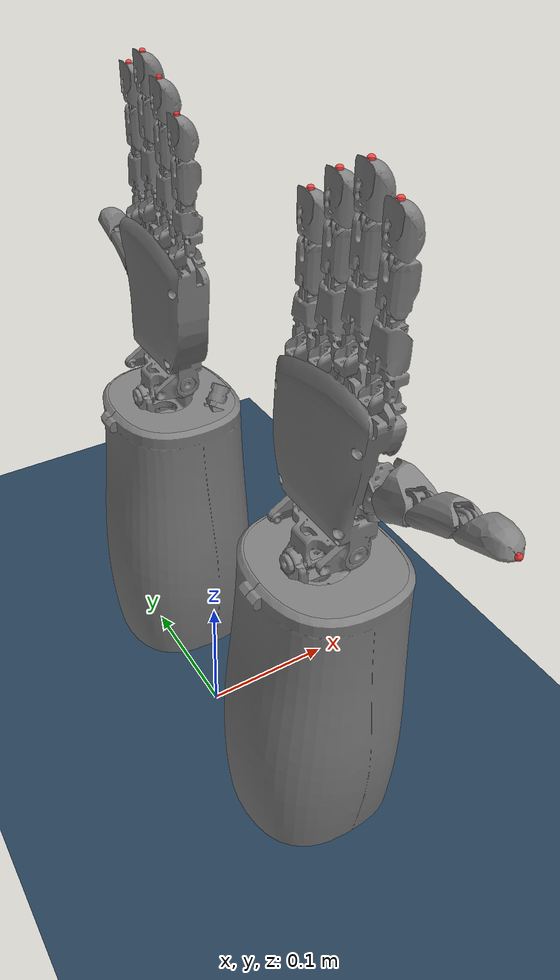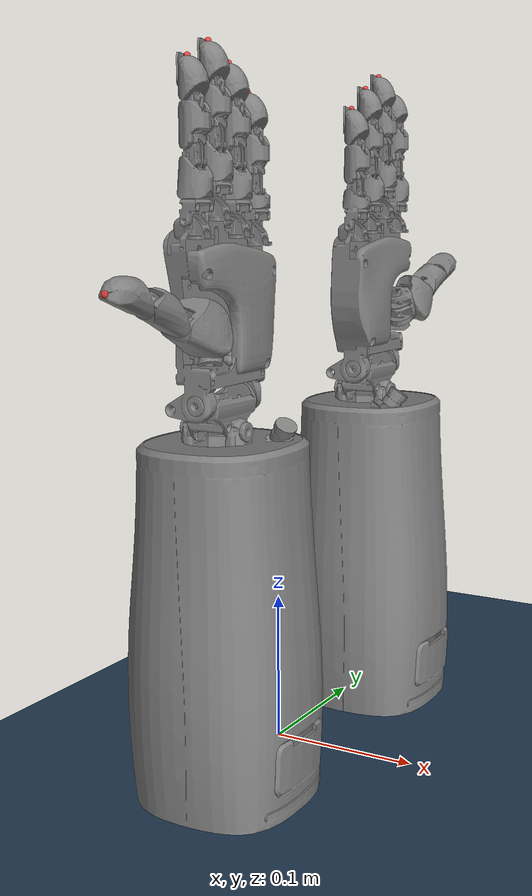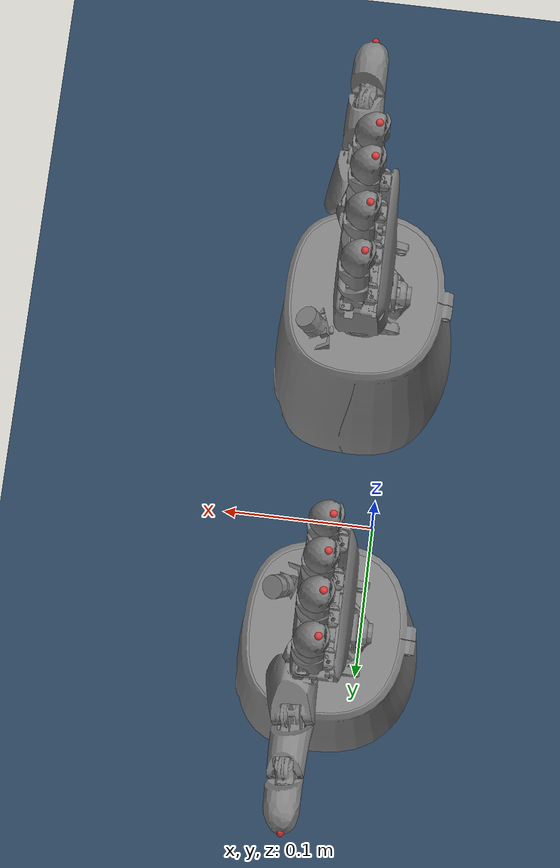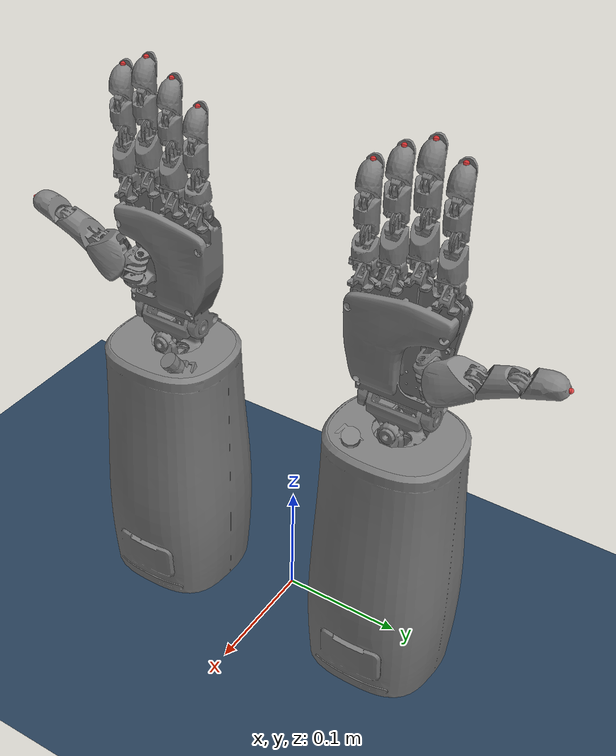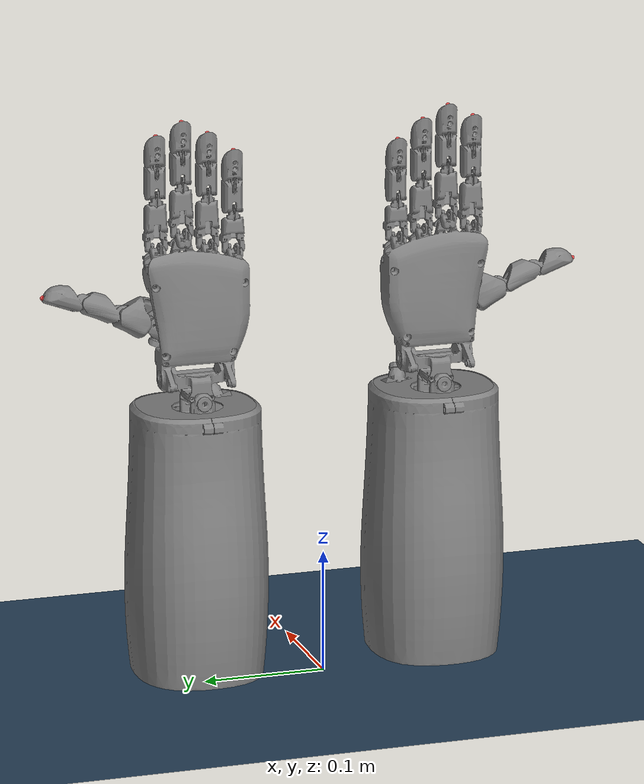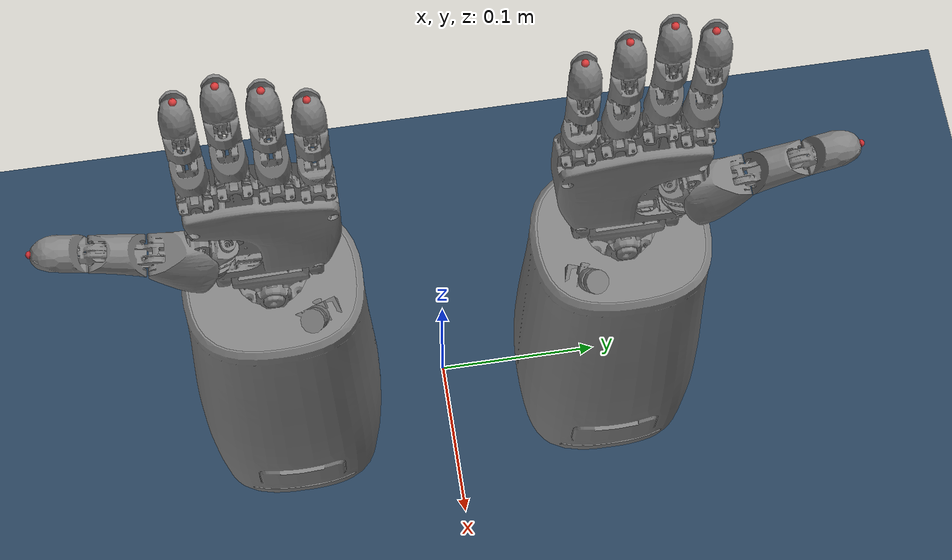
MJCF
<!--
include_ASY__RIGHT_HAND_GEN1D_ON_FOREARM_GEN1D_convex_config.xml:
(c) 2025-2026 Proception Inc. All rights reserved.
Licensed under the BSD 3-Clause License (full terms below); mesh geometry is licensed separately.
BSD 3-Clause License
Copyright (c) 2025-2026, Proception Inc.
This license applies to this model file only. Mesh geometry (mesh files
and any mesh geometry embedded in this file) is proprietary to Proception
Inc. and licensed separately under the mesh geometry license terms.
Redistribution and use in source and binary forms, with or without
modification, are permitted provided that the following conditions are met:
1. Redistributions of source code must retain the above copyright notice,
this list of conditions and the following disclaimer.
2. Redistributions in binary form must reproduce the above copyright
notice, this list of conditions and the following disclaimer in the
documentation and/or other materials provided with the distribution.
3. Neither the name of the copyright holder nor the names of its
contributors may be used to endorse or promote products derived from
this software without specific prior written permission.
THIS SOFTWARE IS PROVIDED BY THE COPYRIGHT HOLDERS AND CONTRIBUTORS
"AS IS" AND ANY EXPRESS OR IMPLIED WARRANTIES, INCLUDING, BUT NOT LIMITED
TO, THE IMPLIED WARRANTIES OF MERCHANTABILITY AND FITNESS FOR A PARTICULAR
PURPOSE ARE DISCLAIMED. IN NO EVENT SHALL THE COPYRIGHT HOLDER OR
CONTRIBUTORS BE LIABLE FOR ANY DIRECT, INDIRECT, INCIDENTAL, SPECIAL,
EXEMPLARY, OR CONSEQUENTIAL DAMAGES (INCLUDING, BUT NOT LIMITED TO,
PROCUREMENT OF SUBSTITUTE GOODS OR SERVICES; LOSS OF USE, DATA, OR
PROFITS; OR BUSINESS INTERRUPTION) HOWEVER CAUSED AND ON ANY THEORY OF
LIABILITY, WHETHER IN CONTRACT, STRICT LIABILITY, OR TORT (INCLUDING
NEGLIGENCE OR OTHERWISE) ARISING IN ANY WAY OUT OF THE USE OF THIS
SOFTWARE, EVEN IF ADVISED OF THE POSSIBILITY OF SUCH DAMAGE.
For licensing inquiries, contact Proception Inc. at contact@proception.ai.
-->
<?xml version='1.0' encoding='utf-8'?>
<mujoco model="BothHandsScene">
    <compiler coordinate="local" angle="radian" meshdir="../../assets/meshes" />
    <include file="common_scene.xml"/>
    <include file="../../assets/mjcf/gen_1_D_R/include_ASY__RIGHT_HAND_GEN1D_ON_FOREARM_GEN1D_convex_config.xml"/>
    <include file="../../assets/mjcf/gen_1_D_L/include_ASY__LEFT_HAND_GEN1D_ON_FOREARM_GEN1D_convex_config.xml"/>

    <worldbody>
        <body name="RHand" pos="0.0000000 0.1000000 0.0000000" quat="1e+00 0e+00 0e+00 0e+00">
            <include file="../../assets/mjcf/gen_1_D_R/include_ASY__RIGHT_HAND_GEN1D_ON_FOREARM_GEN1D_convex_chain.xml"/>
        </body>
        <body name="LHand" pos="0.0000000 -0.1000000 0.0000000" quat="1e+00 0e+00 0e+00 0e+00">
            <include file="../../assets/mjcf/gen_1_D_L/include_ASY__LEFT_HAND_GEN1D_ON_FOREARM_GEN1D_convex_chain.xml"/>
        </body>
    </worldbody>
</mujoco>

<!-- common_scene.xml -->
<mujoco model="scene">
        <!-- Camera placement -->
        <statistic extent="0.3" center="0 0 0.15"/>
        <visual>
            <rgba haze="0.15 0.25 0.35 1"/>
            <quality shadowsize="8192"/>
            <global azimuth="310" elevation="-30"/>
        </visual>

            <default>
        <default class="visual">
            <geom type="mesh" contype="0" conaffinity="0" group="2" />
        </default>
        <default class="collision">
            <geom type="mesh" group="3" rgba="0.6 0.3 0.3 0.3" />
        </default>
        <default class="site/keypoint">
                <site rgba="1 0.2 0.2 0.8" size="0.002" group="0" />
            </default>
            </default>

        <!-- Background -->
        <asset>
            <texture type="skybox" builtin="gradient" rgb1="0.3 0.5 0.7" rgb2="0 0 0" width="512" height="3072"/>
            <texture type="2d" name="groundplane" builtin="checker" mark="edge" rgb1="0.2 0.3 0.4" rgb2="0.1 0.2 0.3"
            markrgb="0.8 0.8 0.8" width="300" height="300"/>
            <material name="groundplane" texture="groundplane" texuniform="true" texrepeat="5 5" reflectance="0.2"/>
        </asset>

        <worldbody>
            <!-- Lighting and floor -->
            <light pos="0 0 1"/>
            <light pos="0.3 0 1.5" dir="0 0 -1" directional="true"/>
            <geom name="floor" pos="0 0 0" size="0 0 0.05" type="plane" material="groundplane"/>
        </worldbody>
    </mujoco>

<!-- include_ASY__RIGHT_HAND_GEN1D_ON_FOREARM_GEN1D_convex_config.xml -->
<mujocoinclude model="ASY__RIGHT_HAND_GEN1D_ON_FOREARM_GEN1D" name="ASY__RIGHT_HAND_GEN1D_ON_FOREARM_GEN1D">
    <asset>
        <mesh name="gen_1_D_R/optimized/bottom_virtual_cover1" file="gen_1_D_R/optimized/asy_right_forearm_gen1d1_bottom_virtual_cover1.obj" />
        <mesh name="gen_1_D_R/optimized/chs" file="gen_1_D_R/optimized/asy_right_forearm_gen1d1_chassis_gen_1d1.obj" />
        <mesh name="gen_1_D_R/optimized/virtual_cover1" file="gen_1_D_R/optimized/asy_right_forearm_gen1d1_virtual_cover1.obj" />
        <mesh name="gen_1_D_R/optimized/gen1d01_dist" file="gen_1_D_R/optimized/asy_right_hand_gen1d1_finger_gen1d01_distal.obj" />
        <mesh name="gen_1_D_R/optimized/gen1d01_med" file="gen_1_D_R/optimized/asy_right_hand_gen1d1_finger_gen1d01_medial.obj" />
        <mesh name="gen_1_D_R/optimized/gen1d01_meta" file="gen_1_D_R/optimized/asy_right_hand_gen1d1_finger_gen1d01_metacarpal.obj" />
        <mesh name="gen_1_D_R/optimized/gen1d01_prox" file="gen_1_D_R/optimized/asy_right_hand_gen1d1_finger_gen1d01_proximal.obj" />
        <mesh name="gen_1_D_R/optimized/gen1d02_dist" file="gen_1_D_R/optimized/asy_right_hand_gen1d1_finger_gen1d02_distal_gen1d01.obj" />
        <mesh name="gen_1_D_R/optimized/gen1d02_med" file="gen_1_D_R/optimized/asy_right_hand_gen1d1_finger_gen1d02_medial_gen1d01.obj" />
        <mesh name="gen_1_D_R/optimized/gen1d02_meta" file="gen_1_D_R/optimized/asy_right_hand_gen1d1_finger_gen1d02_metacarpal_gen1d01.obj" />
        <mesh name="gen_1_D_R/optimized/gen1d02_prox" file="gen_1_D_R/optimized/asy_right_hand_gen1d1_finger_gen1d02_proximal_gen1d01.obj" />
        <mesh name="gen_1_D_R/optimized/gen1d03_dist" file="gen_1_D_R/optimized/asy_right_hand_gen1d1_finger_gen1d03_distal_gen1d01.obj" />
        <mesh name="gen_1_D_R/optimized/gen1d03_med" file="gen_1_D_R/optimized/asy_right_hand_gen1d1_finger_gen1d03_medial_gen1d01.obj" />
        <mesh name="gen_1_D_R/optimized/gen1d03_meta" file="gen_1_D_R/optimized/asy_right_hand_gen1d1_finger_gen1d03_metacarpal_gen1d01.obj" />
        <mesh name="gen_1_D_R/optimized/gen1d03_prox" file="gen_1_D_R/optimized/asy_right_hand_gen1d1_finger_gen1d03_proximal_gen1d01.obj" />
        <mesh name="gen_1_D_R/optimized/palm" file="gen_1_D_R/optimized/asy_right_hand_gen1d1_palm_gen1b01.obj" />
        <mesh name="gen_1_D_R/optimized/pinky_dist" file="gen_1_D_R/optimized/asy_right_hand_gen1d1_pinky_gen1d01_distal_finger.obj" />
        <mesh name="gen_1_D_R/optimized/pinky_med" file="gen_1_D_R/optimized/asy_right_hand_gen1d1_pinky_gen1d01_medial_finger.obj" />
        <mesh name="gen_1_D_R/optimized/pinky_meta" file="gen_1_D_R/optimized/asy_right_hand_gen1d1_pinky_gen1d01_metacarpal_finger.obj" />
        <mesh name="gen_1_D_R/optimized/pinky_prox" file="gen_1_D_R/optimized/asy_right_hand_gen1d1_pinky_gen1d01_proximal.obj" />
        <mesh name="gen_1_D_R/optimized/wrist_base" file="gen_1_D_R/optimized/asy_right_hand_gen1d1_sim_wrist_gen21_r1_base_gen211.obj" />
        <mesh name="gen_1_D_R/optimized/wrist_ujoint" file="gen_1_D_R/optimized/asy_right_hand_gen1d1_sim_wrist_gen21_r1_ujoint_gen211.obj" />
        <mesh name="gen_1_D_R/optimized/thumb_base" file="gen_1_D_R/optimized/asy_right_hand_gen1d1_thumb_gen1d01_base.obj" />
        <mesh name="gen_1_D_R/optimized/thumb_dist" file="gen_1_D_R/optimized/asy_right_hand_gen1d1_thumb_gen1d01_distal.obj" />
        <mesh name="gen_1_D_R/optimized/thumb_meta" file="gen_1_D_R/optimized/asy_right_hand_gen1d1_thumb_gen1d01_metacarpal.obj" />
        <mesh name="gen_1_D_R/optimized/thumb_prox" file="gen_1_D_R/optimized/asy_right_hand_gen1d1_thumb_gen1d01_proximal.obj" />
        <mesh name="gen_1_D_R/optimized/thumb_trap" file="gen_1_D_R/optimized/asy_right_hand_gen1d1_thumb_gen1d01_trapezium.obj" />
        <mesh name="gen_1_D_R/convex/bottom_virtual_cover1" file="gen_1_D_R/convex/asy_right_forearm_gen1d1_bottom_virtual_cover1.obj" />
        <mesh name="gen_1_D_R/convex/chs" file="gen_1_D_R/convex/asy_right_forearm_gen1d1_chassis_gen_1d1.obj" />
        <mesh name="gen_1_D_R/convex/virtual_cover1" file="gen_1_D_R/convex/asy_right_forearm_gen1d1_virtual_cover1.obj" />
        <mesh name="gen_1_D_R/convex/gen1d01_dist" file="gen_1_D_R/convex/asy_right_hand_gen1d1_finger_gen1d01_distal.obj" />
        <mesh name="gen_1_D_R/convex/gen1d01_med" file="gen_1_D_R/convex/asy_right_hand_gen1d1_finger_gen1d01_medial.obj" />
        <mesh name="gen_1_D_R/convex/gen1d01_meta" file="gen_1_D_R/convex/asy_right_hand_gen1d1_finger_gen1d01_metacarpal.obj" />
        <mesh name="gen_1_D_R/convex/gen1d01_prox" file="gen_1_D_R/convex/asy_right_hand_gen1d1_finger_gen1d01_proximal.obj" />
        <mesh name="gen_1_D_R/convex/gen1d02_dist" file="gen_1_D_R/convex/asy_right_hand_gen1d1_finger_gen1d02_distal_gen1d01.obj" />
        <mesh name="gen_1_D_R/convex/gen1d02_med" file="gen_1_D_R/convex/asy_right_hand_gen1d1_finger_gen1d02_medial_gen1d01.obj" />
        <mesh name="gen_1_D_R/convex/gen1d02_meta" file="gen_1_D_R/convex/asy_right_hand_gen1d1_finger_gen1d02_metacarpal_gen1d01.obj" />
        <mesh name="gen_1_D_R/convex/gen1d02_prox" file="gen_1_D_R/convex/asy_right_hand_gen1d1_finger_gen1d02_proximal_gen1d01.obj" />
        <mesh name="gen_1_D_R/convex/gen1d03_dist" file="gen_1_D_R/convex/asy_right_hand_gen1d1_finger_gen1d03_distal_gen1d01.obj" />
        <mesh name="gen_1_D_R/convex/gen1d03_med" file="gen_1_D_R/convex/asy_right_hand_gen1d1_finger_gen1d03_medial_gen1d01.obj" />
        <mesh name="gen_1_D_R/convex/gen1d03_meta" file="gen_1_D_R/convex/asy_right_hand_gen1d1_finger_gen1d03_metacarpal_gen1d01.obj" />
        <mesh name="gen_1_D_R/convex/gen1d03_prox" file="gen_1_D_R/convex/asy_right_hand_gen1d1_finger_gen1d03_proximal_gen1d01.obj" />
        <mesh name="gen_1_D_R/convex/palm" file="gen_1_D_R/convex/asy_right_hand_gen1d1_palm_gen1b01.obj" />
        <mesh name="gen_1_D_R/convex/pinky_dist" file="gen_1_D_R/convex/asy_right_hand_gen1d1_pinky_gen1d01_distal_finger.obj" />
        <mesh name="gen_1_D_R/convex/pinky_med" file="gen_1_D_R/convex/asy_right_hand_gen1d1_pinky_gen1d01_medial_finger.obj" />
        <mesh name="gen_1_D_R/convex/pinky_meta" file="gen_1_D_R/convex/asy_right_hand_gen1d1_pinky_gen1d01_metacarpal_finger.obj" />
        <mesh name="gen_1_D_R/convex/pinky_prox" file="gen_1_D_R/convex/asy_right_hand_gen1d1_pinky_gen1d01_proximal.obj" />
        <mesh name="gen_1_D_R/convex/wrist_base" file="gen_1_D_R/convex/asy_right_hand_gen1d1_sim_wrist_gen21_r1_base_gen211.obj" />
        <mesh name="gen_1_D_R/convex/wrist_ujoint" file="gen_1_D_R/convex/asy_right_hand_gen1d1_sim_wrist_gen21_r1_ujoint_gen211.obj" />
        <mesh name="gen_1_D_R/convex/thumb_base" file="gen_1_D_R/convex/asy_right_hand_gen1d1_thumb_gen1d01_base.obj" />
        <mesh name="gen_1_D_R/convex/thumb_dist" file="gen_1_D_R/convex/asy_right_hand_gen1d1_thumb_gen1d01_distal.obj" />
        <mesh name="gen_1_D_R/convex/thumb_meta" file="gen_1_D_R/convex/asy_right_hand_gen1d1_thumb_gen1d01_metacarpal.obj" />
        <mesh name="gen_1_D_R/convex/thumb_prox" file="gen_1_D_R/convex/asy_right_hand_gen1d1_thumb_gen1d01_proximal.obj" />
        <mesh name="gen_1_D_R/convex/thumb_trap" file="gen_1_D_R/convex/asy_right_hand_gen1d1_thumb_gen1d01_trapezium.obj" />
    </asset>
</mujocoinclude>

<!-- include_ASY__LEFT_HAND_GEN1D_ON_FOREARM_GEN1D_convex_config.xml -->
<mujocoinclude model="ASY__LEFT_HAND_GEN1D_ON_FOREARM_GEN1D" name="ASY__LEFT_HAND_GEN1D_ON_FOREARM_GEN1D">
    <asset>
        <mesh name="gen_1_D_L/optimized/bottom_virtual_cover1" file="gen_1_D_L/optimized/asy_left_forearm_gen1d1_bottom_virtual_cover1.obj" />
        <mesh name="gen_1_D_L/optimized/chs" file="gen_1_D_L/optimized/asy_left_forearm_gen1d1_chassis_gen_1d1.obj" />
        <mesh name="gen_1_D_L/optimized/virtual_cover1" file="gen_1_D_L/optimized/asy_left_forearm_gen1d1_virtual_cover1.obj" />
        <mesh name="gen_1_D_L/optimized/gen1d01_dist" file="gen_1_D_L/optimized/asy_left_hand_gen1d1_finger_gen1d01_distal.obj" />
        <mesh name="gen_1_D_L/optimized/gen1d01_med" file="gen_1_D_L/optimized/asy_left_hand_gen1d1_finger_gen1d01_medial.obj" />
        <mesh name="gen_1_D_L/optimized/gen1d01_meta" file="gen_1_D_L/optimized/asy_left_hand_gen1d1_finger_gen1d01_metacarpal.obj" />
        <mesh name="gen_1_D_L/optimized/gen1d01_prox" file="gen_1_D_L/optimized/asy_left_hand_gen1d1_finger_gen1d01_proximal.obj" />
        <mesh name="gen_1_D_L/optimized/gen1d02_dist" file="gen_1_D_L/optimized/asy_left_hand_gen1d1_finger_gen1d02_distal_gen1d01.obj" />
        <mesh name="gen_1_D_L/optimized/gen1d02_med" file="gen_1_D_L/optimized/asy_left_hand_gen1d1_finger_gen1d02_medial_gen1d01.obj" />
        <mesh name="gen_1_D_L/optimized/gen1d02_meta" file="gen_1_D_L/optimized/asy_left_hand_gen1d1_finger_gen1d02_metacarpal_gen1d01.obj" />
        <mesh name="gen_1_D_L/optimized/gen1d02_prox" file="gen_1_D_L/optimized/asy_left_hand_gen1d1_finger_gen1d02_proximal_gen1d01.obj" />
        <mesh name="gen_1_D_L/optimized/gen1d03_dist" file="gen_1_D_L/optimized/asy_left_hand_gen1d1_finger_gen1d03_distal_gen1d01.obj" />
        <mesh name="gen_1_D_L/optimized/gen1d03_med" file="gen_1_D_L/optimized/asy_left_hand_gen1d1_finger_gen1d03_medial_gen1d01.obj" />
        <mesh name="gen_1_D_L/optimized/gen1d03_meta" file="gen_1_D_L/optimized/asy_left_hand_gen1d1_finger_gen1d03_metacarpal_gen1d01.obj" />
        <mesh name="gen_1_D_L/optimized/gen1d03_prox" file="gen_1_D_L/optimized/asy_left_hand_gen1d1_finger_gen1d03_proximal_gen1d01.obj" />
        <mesh name="gen_1_D_L/optimized/palm" file="gen_1_D_L/optimized/asy_left_hand_gen1d1_palm_gen1b01.obj" />
        <mesh name="gen_1_D_L/optimized/pinky_dist" file="gen_1_D_L/optimized/asy_left_hand_gen1d1_pinky_gen1d01_distal_finger.obj" />
        <mesh name="gen_1_D_L/optimized/pinky_med" file="gen_1_D_L/optimized/asy_left_hand_gen1d1_pinky_gen1d01_medial_finger.obj" />
        <mesh name="gen_1_D_L/optimized/pinky_meta" file="gen_1_D_L/optimized/asy_left_hand_gen1d1_pinky_gen1d01_metacarpal_finger.obj" />
        <mesh name="gen_1_D_L/optimized/pinky_prox" file="gen_1_D_L/optimized/asy_left_hand_gen1d1_pinky_gen1d01_proximal.obj" />
        <mesh name="gen_1_D_L/optimized/wrist_base" file="gen_1_D_L/optimized/asy_left_hand_gen1d1_sim_wrist_gen211_base.obj" />
        <mesh name="gen_1_D_L/optimized/wrist_ujoint" file="gen_1_D_L/optimized/asy_left_hand_gen1d1_sim_wrist_gen211_ujoint.obj" />
        <mesh name="gen_1_D_L/optimized/thumb_base" file="gen_1_D_L/optimized/asy_left_hand_gen1d1_thumb_gen1d01_base.obj" />
        <mesh name="gen_1_D_L/optimized/thumb_dist" file="gen_1_D_L/optimized/asy_left_hand_gen1d1_thumb_gen1d01_distal.obj" />
        <mesh name="gen_1_D_L/optimized/thumb_meta" file="gen_1_D_L/optimized/asy_left_hand_gen1d1_thumb_gen1d01_metacarpal.obj" />
        <mesh name="gen_1_D_L/optimized/thumb_prox" file="gen_1_D_L/optimized/asy_left_hand_gen1d1_thumb_gen1d01_proximal.obj" />
        <mesh name="gen_1_D_L/optimized/thumb_trap" file="gen_1_D_L/optimized/asy_left_hand_gen1d1_thumb_gen1d01_trapezium.obj" />
        <mesh name="gen_1_D_L/convex/bottom_virtual_cover1" file="gen_1_D_L/convex/asy_left_forearm_gen1d1_bottom_virtual_cover1.obj" />
        <mesh name="gen_1_D_L/convex/chs" file="gen_1_D_L/convex/asy_left_forearm_gen1d1_chassis_gen_1d1.obj" />
        <mesh name="gen_1_D_L/convex/virtual_cover1" file="gen_1_D_L/convex/asy_left_forearm_gen1d1_virtual_cover1.obj" />
        <mesh name="gen_1_D_L/convex/gen1d01_dist" file="gen_1_D_L/convex/asy_left_hand_gen1d1_finger_gen1d01_distal.obj" />
        <mesh name="gen_1_D_L/convex/gen1d01_med" file="gen_1_D_L/convex/asy_left_hand_gen1d1_finger_gen1d01_medial.obj" />
        <mesh name="gen_1_D_L/convex/gen1d01_meta" file="gen_1_D_L/convex/asy_left_hand_gen1d1_finger_gen1d01_metacarpal.obj" />
        <mesh name="gen_1_D_L/convex/gen1d01_prox" file="gen_1_D_L/convex/asy_left_hand_gen1d1_finger_gen1d01_proximal.obj" />
        <mesh name="gen_1_D_L/convex/gen1d02_dist" file="gen_1_D_L/convex/asy_left_hand_gen1d1_finger_gen1d02_distal_gen1d01.obj" />
        <mesh name="gen_1_D_L/convex/gen1d02_med" file="gen_1_D_L/convex/asy_left_hand_gen1d1_finger_gen1d02_medial_gen1d01.obj" />
        <mesh name="gen_1_D_L/convex/gen1d02_meta" file="gen_1_D_L/convex/asy_left_hand_gen1d1_finger_gen1d02_metacarpal_gen1d01.obj" />
        <mesh name="gen_1_D_L/convex/gen1d02_prox" file="gen_1_D_L/convex/asy_left_hand_gen1d1_finger_gen1d02_proximal_gen1d01.obj" />
        <mesh name="gen_1_D_L/convex/gen1d03_dist" file="gen_1_D_L/convex/asy_left_hand_gen1d1_finger_gen1d03_distal_gen1d01.obj" />
        <mesh name="gen_1_D_L/convex/gen1d03_med" file="gen_1_D_L/convex/asy_left_hand_gen1d1_finger_gen1d03_medial_gen1d01.obj" />
        <mesh name="gen_1_D_L/convex/gen1d03_meta" file="gen_1_D_L/convex/asy_left_hand_gen1d1_finger_gen1d03_metacarpal_gen1d01.obj" />
        <mesh name="gen_1_D_L/convex/gen1d03_prox" file="gen_1_D_L/convex/asy_left_hand_gen1d1_finger_gen1d03_proximal_gen1d01.obj" />
        <mesh name="gen_1_D_L/convex/palm" file="gen_1_D_L/convex/asy_left_hand_gen1d1_palm_gen1b01.obj" />
        <mesh name="gen_1_D_L/convex/pinky_dist" file="gen_1_D_L/convex/asy_left_hand_gen1d1_pinky_gen1d01_distal_finger.obj" />
        <mesh name="gen_1_D_L/convex/pinky_med" file="gen_1_D_L/convex/asy_left_hand_gen1d1_pinky_gen1d01_medial_finger.obj" />
        <mesh name="gen_1_D_L/convex/pinky_meta" file="gen_1_D_L/convex/asy_left_hand_gen1d1_pinky_gen1d01_metacarpal_finger.obj" />
        <mesh name="gen_1_D_L/convex/pinky_prox" file="gen_1_D_L/convex/asy_left_hand_gen1d1_pinky_gen1d01_proximal.obj" />
        <mesh name="gen_1_D_L/convex/wrist_base" file="gen_1_D_L/convex/asy_left_hand_gen1d1_sim_wrist_gen211_base.obj" />
        <mesh name="gen_1_D_L/convex/wrist_ujoint" file="gen_1_D_L/convex/asy_left_hand_gen1d1_sim_wrist_gen211_ujoint.obj" />
        <mesh name="gen_1_D_L/convex/thumb_base" file="gen_1_D_L/convex/asy_left_hand_gen1d1_thumb_gen1d01_base.obj" />
        <mesh name="gen_1_D_L/convex/thumb_dist" file="gen_1_D_L/convex/asy_left_hand_gen1d1_thumb_gen1d01_distal.obj" />
        <mesh name="gen_1_D_L/convex/thumb_meta" file="gen_1_D_L/convex/asy_left_hand_gen1d1_thumb_gen1d01_metacarpal.obj" />
        <mesh name="gen_1_D_L/convex/thumb_prox" file="gen_1_D_L/convex/asy_left_hand_gen1d1_thumb_gen1d01_proximal.obj" />
        <mesh name="gen_1_D_L/convex/thumb_trap" file="gen_1_D_L/convex/asy_left_hand_gen1d1_thumb_gen1d01_trapezium.obj" />
    </asset>
</mujocoinclude>

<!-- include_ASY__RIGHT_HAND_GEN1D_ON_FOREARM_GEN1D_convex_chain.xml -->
<mujocoinclude model="ASY__RIGHT_HAND_GEN1D_ON_FOREARM_GEN1D" name="ASY__RIGHT_HAND_GEN1D_ON_FOREARM_GEN1D">
    <body name="R_right_forearm_chs" pos="0.0000000 0.0000000 0.0000000" quat="5e-01 5e-01 5e-01 5e-01">
        <inertial mass="5.7536239" pos="-0.0000386 0.1070748 0.0191471" diaginertia="2.022766e-02 4.968134e-03 2.094171e-02" />
        <geom name="R_right_forearm_chs/visual" class="visual" mesh="gen_1_D_R/optimized/chs" />
        <geom name="R_right_forearm_chs/collision" class="collision" mesh="gen_1_D_R/convex/chs" />
        <camera name="R_wrist_camera" pos="-0.0192175 0.2372545 0.0533280" quat="4.964001e-01 8.425887e-01 -2.056157e-01 -3.678822e-02" fovy="96" />
        <site name="R_wrist_camera" class="site/keypoint" pos="-0.0234756 0.2241122 0.0452565" quat="2.056157e-01 3.678822e-02 4.964001e-01 8.425887e-01" />
        <body name="R_right_forearm_bottom_virtual_cover1" pos="0.0000000 0.0050000 0.0200000" quat="7.071068e-01 -7.071068e-01 3.70192e-15 -4.5206e-15">
            <inertial mass="0.0173193" pos="0.0000000 0.0000000 0.0005000" diaginertia="1.86024e-06 5.424478e-06 7.281831e-06" />
            <geom name="R_right_forearm_bottom_virtual_cover1/visual" class="visual" mesh="gen_1_D_R/optimized/bottom_virtual_cover1" />
            <geom name="R_right_forearm_bottom_virtual_cover1/collision" class="collision" mesh="gen_1_D_R/convex/bottom_virtual_cover1" />
        </body>
        <body name="R_right_forearm_cover1" pos="0.0000000 0.0120000 -0.0000000" quat="1e+00 -0e+00 -3.062e-17 -0e+00">
            <inertial mass="0.0462142" pos="-0.0000007 0.2137000 0.0216575" diaginertia="2.833063e-05 6.341319e-05 3.509025e-05" />
            <geom name="R_right_forearm_cover1/visual" class="visual" mesh="gen_1_D_R/optimized/virtual_cover1" />
            <geom name="R_right_forearm_cover1/collision" class="collision" mesh="gen_1_D_R/convex/virtual_cover1" />
        </body>
        <body name="R_right_forearm_wrist_base" pos="0.0000000 0.2132000 0.0154500" quat="1e+00 7.643e-17 3.072e-17 0e+00">
            <inertial mass="0.0249763" pos="0.0000046 0.0061671 0.0004368" diaginertia="5.728056e-06 1.163974e-05 7.998322e-06" />
            <geom name="R_right_forearm_wrist_base/visual" class="visual" mesh="gen_1_D_R/optimized/wrist_base" />
            <geom name="R_right_forearm_wrist_base/collision" class="collision" mesh="gen_1_D_R/convex/wrist_base" />
            <body name="R_right_forearm_wrist_ujoint" pos="-0.0000000 0.0200000 -0.0000000" quat="-0e+00 7.071068e-01 7.071068e-01 -9.81e-18">
                <inertial mass="0.0512518" pos="0.0124664 0.0000000 -0.0032079" diaginertia="1.237338e-05 6.708757e-06 1.103105e-05" />
                <geom name="R_right_forearm_wrist_ujoint/visual" class="visual" mesh="gen_1_D_R/optimized/wrist_ujoint" />
                <geom name="R_right_forearm_wrist_ujoint/collision" class="collision" mesh="gen_1_D_R/convex/wrist_ujoint" />
                <joint name="R_wrist_abd" axis="0 0 1" pos="0 0 0" range="-5.235988e-01 5.235988e-01" limited="true" />
                <body name="R_right_forearm_palm" pos="0.0180000 -0.0000000 -0.0050000" quat="5e-01 -5e-01 5e-01 5e-01">
                    <inertial mass="0.1455486" pos="-0.0003189 -0.0536559 -0.0027915" diaginertia="1.970173e-04 8.125984e-05 1.359965e-04" />
                    <geom name="R_right_forearm_palm/visual" class="visual" mesh="gen_1_D_R/optimized/palm" />
                    <geom name="R_right_forearm_palm/collision" class="collision" mesh="gen_1_D_R/convex/palm" />
                    <joint name="R_wrist_flex" axis="0 0 1" pos="0 0 0" range="-5.235988e-01 1.134464e+00" limited="true" />
                    <body name="R_right_forearm_gen1d01_meta" pos="0.0010000 -0.0980000 0.0310000" quat="1.4505e-16 -7.071068e-01 -3.0533e-16 7.071068e-01">
                        <inertial mass="0.0043138" pos="0.0000005 0.0024378 0.0002621" diaginertia="1.669168e-07 1.661503e-07 1.100527e-07" />
                        <geom name="R_right_forearm_gen1d01_meta/visual" class="visual" mesh="gen_1_D_R/optimized/gen1d01_meta" />
                        <geom name="R_right_forearm_gen1d01_meta/collision" class="collision" mesh="gen_1_D_R/convex/gen1d01_meta" />
                        <joint name="R_i0_CMC_abd" axis="0 0 1" pos="0 0 0" range="-2.617994e-01 5.235988e-01" limited="true" />
                        <body name="R_right_forearm_gen1d01_prox" pos="-0.0000000 0.0069724 0.0000120" quat="-1.6398e-16 -7.071068e-01 -2.868e-16 7.071068e-01">
                            <inertial mass="0.0107138" pos="0.0020036 -0.0200417 0.0000000" diaginertia="1.537877e-06 4.011074e-07 1.416463e-06" />
                            <geom name="R_right_forearm_gen1d01_prox/visual" class="visual" mesh="gen_1_D_R/optimized/gen1d01_prox" />
                            <geom name="R_right_forearm_gen1d01_prox/collision" class="collision" mesh="gen_1_D_R/convex/gen1d01_prox" />
                            <joint name="R_i1_MCP" axis="0 0 1" pos="0 0 0" range="-3.490658e-01 1.570796e+00" limited="true" />
                            <body name="R_right_forearm_gen1d01_med" pos="0.0000000 -0.0420000 -0.0000000" quat="1e+00 4.5846e-16 -4.7184e-16 2.6156e-16">
                                <inertial mass="0.0053193" pos="0.0017364 -0.0116914 -0.0000000" diaginertia="3.546328e-07 1.970482e-07 3.013907e-07" />
                                <geom name="R_right_forearm_gen1d01_med/visual" class="visual" mesh="gen_1_D_R/optimized/gen1d01_med" />
                                <geom name="R_right_forearm_gen1d01_med/collision" class="collision" mesh="gen_1_D_R/convex/gen1d01_med" />
                                <joint name="R_i2_PIP" axis="0 0 1" pos="0 0 0" range="-3.490658e-01 1.570796e+00" limited="true" />
                                <body name="R_right_forearm_gen1d01_dist" pos="0.0040000 -0.0200000 0.0000000" quat="1e+00 -5.0301e-16 1.1102e-16 -8.407e-17">
                                    <inertial mass="0.0062029" pos="-0.0029017 -0.0133183 0.0000000" diaginertia="4.271275e-07 1.726438e-07 4.189138e-07" />
                                    <geom name="R_right_forearm_gen1d01_dist/visual" class="visual" mesh="gen_1_D_R/optimized/gen1d01_dist" />
                                    <geom name="R_right_forearm_gen1d01_dist/collision" class="collision" mesh="gen_1_D_R/convex/gen1d01_dist" />
                                    <site name="R_index_tip_site" class="site/keypoint" pos="-0.0060000 -0.0275000 0.0000000" />
                                    <joint name="R_i3_DIP" axis="0 0 1" pos="0 0 0" range="0e+00 1.570796e+00" limited="true" />
                                </body>
                            </body>
                        </body>
                    </body>
                    <body name="R_right_forearm_gen1d02_meta" pos="0.0010000 -0.1080000 0.0100000" quat="1.4505e-16 -7.071068e-01 -3.0533e-16 7.071068e-01">
                        <inertial mass="0.0043138" pos="0.0000005 0.0024378 0.0002621" diaginertia="1.669168e-07 1.661503e-07 1.100527e-07" />
                        <geom name="R_right_forearm_gen1d02_meta/visual" class="visual" mesh="gen_1_D_R/optimized/gen1d02_meta" />
                        <geom name="R_right_forearm_gen1d02_meta/collision" class="collision" mesh="gen_1_D_R/convex/gen1d02_meta" />
                        <joint name="R_m0_CMC_abd" axis="0 0 1" pos="0 0 0" range="-2.617994e-01 2.617994e-01" limited="true" />
                        <body name="R_right_forearm_gen1d02_prox" pos="-0.0000000 0.0069724 0.0000120" quat="-1.6398e-16 -7.071068e-01 -2.868e-16 7.071068e-01">
                            <inertial mass="0.0107138" pos="0.0020036 -0.0200417 0.0000000" diaginertia="1.537877e-06 4.011074e-07 1.416463e-06" />
                            <geom name="R_right_forearm_gen1d02_prox/visual" class="visual" mesh="gen_1_D_R/optimized/gen1d02_prox" />
                            <geom name="R_right_forearm_gen1d02_prox/collision" class="collision" mesh="gen_1_D_R/convex/gen1d02_prox" />
                            <joint name="R_m1_MCP" axis="0 0 1" pos="0 0 0" range="-3.490658e-01 1.570796e+00" limited="true" />
                            <body name="R_right_forearm_gen1d02_med" pos="0.0000000 -0.0420000 -0.0000000" quat="1e+00 4.5846e-16 -4.7184e-16 2.6156e-16">
                                <inertial mass="0.0053193" pos="0.0017364 -0.0116914 -0.0000000" diaginertia="3.546328e-07 1.970482e-07 3.013907e-07" />
                                <geom name="R_right_forearm_gen1d02_med/visual" class="visual" mesh="gen_1_D_R/optimized/gen1d02_med" />
                                <geom name="R_right_forearm_gen1d02_med/collision" class="collision" mesh="gen_1_D_R/convex/gen1d02_med" />
                                <joint name="R_m2_PIP" axis="0 0 1" pos="0 0 0" range="-3.490658e-01 1.570796e+00" limited="true" />
                                <body name="R_right_forearm_gen1d02_dist" pos="0.0040000 -0.0200000 0.0000000" quat="1e+00 -5.0301e-16 1.1102e-16 -8.407e-17">
                                    <inertial mass="0.0062029" pos="-0.0029017 -0.0133183 0.0000000" diaginertia="4.271275e-07 1.726438e-07 4.189138e-07" />
                                    <geom name="R_right_forearm_gen1d02_dist/visual" class="visual" mesh="gen_1_D_R/optimized/gen1d02_dist" />
                                    <geom name="R_right_forearm_gen1d02_dist/collision" class="collision" mesh="gen_1_D_R/convex/gen1d02_dist" />
                                    <site name="R_middle_tip_site" class="site/keypoint" pos="-0.0060000 -0.0275000 0.0000000" />
                                    <joint name="R_m3_DIP" axis="0 0 1" pos="0 0 0" range="0e+00 1.570796e+00" limited="true" />
                                </body>
                            </body>
                        </body>
                    </body>
                    <body name="R_right_forearm_gen1d03_meta" pos="0.0010000 -0.0980000 -0.0110000" quat="1.4505e-16 -7.071068e-01 -3.0533e-16 7.071068e-01">
                        <inertial mass="0.0043138" pos="0.0000005 0.0024378 0.0002621" diaginertia="1.669168e-07 1.661503e-07 1.100527e-07" />
                        <geom name="R_right_forearm_gen1d03_meta/visual" class="visual" mesh="gen_1_D_R/optimized/gen1d03_meta" />
                        <geom name="R_right_forearm_gen1d03_meta/collision" class="collision" mesh="gen_1_D_R/convex/gen1d03_meta" />
                        <joint name="R_r0_CMC_abd" axis="0 0 1" pos="0 0 0" range="-2.617994e-01 2.617994e-01" limited="true" />
                        <body name="R_right_forearm_gen1d03_prox" pos="0.0000000 0.0069724 0.0000120" quat="-1.6398e-16 -7.071068e-01 -2.868e-16 7.071068e-01">
                            <inertial mass="0.0107138" pos="0.0020036 -0.0200417 0.0000000" diaginertia="1.537877e-06 4.011074e-07 1.416463e-06" />
                            <geom name="R_right_forearm_gen1d03_prox/visual" class="visual" mesh="gen_1_D_R/optimized/gen1d03_prox" />
                            <geom name="R_right_forearm_gen1d03_prox/collision" class="collision" mesh="gen_1_D_R/convex/gen1d03_prox" />
                            <joint name="R_r1_MCP" axis="0 0 1" pos="0 0 0" range="-3.490658e-01 1.570796e+00" limited="true" />
                            <body name="R_right_forearm_gen1d03_med" pos="0.0000000 -0.0420000 -0.0000000" quat="1e+00 4.5846e-16 -4.7184e-16 2.6156e-16">
                                <inertial mass="0.0053193" pos="0.0017364 -0.0116914 -0.0000000" diaginertia="3.546328e-07 1.970482e-07 3.013907e-07" />
                                <geom name="R_right_forearm_gen1d03_med/visual" class="visual" mesh="gen_1_D_R/optimized/gen1d03_med" />
                                <geom name="R_right_forearm_gen1d03_med/collision" class="collision" mesh="gen_1_D_R/convex/gen1d03_med" />
                                <joint name="R_r2_PIP" axis="0 0 1" pos="0 0 0" range="-3.490658e-01 1.570796e+00" limited="true" />
                                <body name="R_right_forearm_gen1d03_dist" pos="0.0040000 -0.0200000 0.0000000" quat="1e+00 -5.0301e-16 1.1102e-16 -8.407e-17">
                                    <inertial mass="0.0062029" pos="-0.0029017 -0.0133183 0.0000000" diaginertia="4.271275e-07 1.726438e-07 4.189138e-07" />
                                    <geom name="R_right_forearm_gen1d03_dist/visual" class="visual" mesh="gen_1_D_R/optimized/gen1d03_dist" />
                                    <geom name="R_right_forearm_gen1d03_dist/collision" class="collision" mesh="gen_1_D_R/convex/gen1d03_dist" />
                                    <site name="R_ring_tip_site" class="site/keypoint" pos="-0.0060000 -0.0275000 0.0000000" />
                                    <joint name="R_r3_DIP" axis="0 0 1" pos="0 0 0" range="0e+00 1.570796e+00" limited="true" />
                                </body>
                            </body>
                        </body>
                    </body>
                    <body name="R_right_forearm_pinky_meta" pos="0.0010000 -0.0930000 -0.0320000" quat="1.4505e-16 -7.071068e-01 -3.0533e-16 7.071068e-01">
                        <inertial mass="0.0043138" pos="0.0000005 0.0024378 0.0002621" diaginertia="1.669168e-07 1.661503e-07 1.100527e-07" />
                        <geom name="R_right_forearm_pinky_meta/visual" class="visual" mesh="gen_1_D_R/optimized/pinky_meta" />
                        <geom name="R_right_forearm_pinky_meta/collision" class="collision" mesh="gen_1_D_R/convex/pinky_meta" />
                        <joint name="R_p0_CMC_abd" axis="0 0 1" pos="0 0 0" range="-6.108652e-01 2.617994e-01" limited="true" />
                        <body name="R_right_forearm_pinky_prox" pos="0.0000000 0.0069724 0.0000120" quat="-1.6398e-16 -7.071068e-01 -2.868e-16 7.071068e-01">
                            <inertial mass="0.0076500" pos="0.0018500 -0.0155669 -0.0000001" diaginertia="7.286889e-07 2.804494e-07 6.285112e-07" />
                            <geom name="R_right_forearm_pinky_prox/visual" class="visual" mesh="gen_1_D_R/optimized/pinky_prox" />
                            <geom name="R_right_forearm_pinky_prox/collision" class="collision" mesh="gen_1_D_R/convex/pinky_prox" />
                            <joint name="R_p1_MCP" axis="0 0 1" pos="0 0 0" range="-3.490658e-01 1.570796e+00" limited="true" />
                            <body name="R_right_forearm_pinky_med" pos="0.0000000 -0.0320000 -0.0000000" quat="1e+00 4.7992e-16 -4.7184e-16 2.6156e-16">
                                <inertial mass="0.0053193" pos="0.0017364 -0.0116914 -0.0000000" diaginertia="3.546328e-07 1.970482e-07 3.013907e-07" />
                                <geom name="R_right_forearm_pinky_med/visual" class="visual" mesh="gen_1_D_R/optimized/pinky_med" />
                                <geom name="R_right_forearm_pinky_med/collision" class="collision" mesh="gen_1_D_R/convex/pinky_med" />
                                <joint name="R_p2_PIP" axis="0 0 1" pos="0 0 0" range="-3.490658e-01 1.570796e+00" limited="true" />
                                <body name="R_right_forearm_pinky_dist" pos="0.0040000 -0.0200000 0.0000000" quat="1e+00 -5.2448e-16 0e+00 -8.407e-17">
                                    <inertial mass="0.0062029" pos="-0.0029017 -0.0133183 0.0000000" diaginertia="4.271275e-07 1.726438e-07 4.189138e-07" />
                                    <geom name="R_right_forearm_pinky_dist/visual" class="visual" mesh="gen_1_D_R/optimized/pinky_dist" />
                                    <geom name="R_right_forearm_pinky_dist/collision" class="collision" mesh="gen_1_D_R/convex/pinky_dist" />
                                    <site name="R_pinky_tip_site" class="site/keypoint" pos="-0.0060000 -0.0275000 0.0000000" />
                                    <joint name="R_p3_DIP" axis="0 0 1" pos="0 0 0" range="0e+00 1.570796e+00" limited="true" />
                                </body>
                            </body>
                        </body>
                    </body>
                    <body name="R_right_forearm_thumb_base" pos="-0.0040000 -0.0272638 0.0199825" quat="-3.1262e-16 -7.071068e-01 1.4449e-16 7.071068e-01">
                        <inertial mass="0.0070445" pos="-0.0025202 0.0129502 -0.0053902" diaginertia="1.263181e-06 4.813414e-07 1.280585e-06" />
                        <geom name="R_right_forearm_thumb_base/visual" class="visual" mesh="gen_1_D_R/optimized/thumb_base" />
                        <geom name="R_right_forearm_thumb_base/collision" class="collision" mesh="gen_1_D_R/convex/thumb_base" />
                        <body name="R_right_forearm_thumb_trap" pos="-0.0035941 0.0122416 -0.0140000" quat="4.055798e-01 5.79228e-01 4.055798e-01 -5.79228e-01">
                            <inertial mass="0.0081085" pos="-0.0004402 -0.0025199 -0.0007116" diaginertia="5.613289e-07 6.417263e-07 4.19855e-07" />
                            <geom name="R_right_forearm_thumb_trap/visual" class="visual" mesh="gen_1_D_R/optimized/thumb_trap" />
                            <geom name="R_right_forearm_thumb_trap/collision" class="collision" mesh="gen_1_D_R/convex/thumb_trap" />
                            <joint name="R_t0_TM_abd" axis="0 0 1" pos="0 0 0" range="0e+00 2.094395e+00" limited="true" />
                            <body name="R_right_forearm_thumb_meta" pos="-0.0000000 -0.0100000 0.0010000" quat="5e-01 -5e-01 5e-01 -5e-01">
                                <inertial mass="0.0179407" pos="0.0124978 -0.0008121 0.0024301" diaginertia="1.77283e-06 2.210062e-06 1.944541e-06" />
                                <geom name="R_right_forearm_thumb_meta/visual" class="visual" mesh="gen_1_D_R/optimized/thumb_meta" />
                                <geom name="R_right_forearm_thumb_meta/collision" class="collision" mesh="gen_1_D_R/convex/thumb_meta" />
                                <joint name="R_t1_TM" axis="0 0 1" pos="0 0 0" range="-5.235988e-01 1.047198e+00" limited="true" />
                                <body name="R_right_forearm_thumb_prox" pos="0.0250000 -0.0000000 -0.0000000" quat="7.010574e-01 9.229596e-02 9.229596e-02 -7.010574e-01">
                                    <inertial mass="0.0124315" pos="0.0001398 0.0158835 0.0001150" diaginertia="1.572135e-06 6.250965e-07 1.419345e-06" />
                                    <geom name="R_right_forearm_thumb_prox/visual" class="visual" mesh="gen_1_D_R/optimized/thumb_prox" />
                                    <geom name="R_right_forearm_thumb_prox/collision" class="collision" mesh="gen_1_D_R/convex/thumb_prox" />
                                    <joint name="R_t2_MCP" axis="0 0 1" pos="0 0 0" range="-3.490658e-01 1.570796e+00" limited="true" />
                                    <body name="R_right_forearm_thumb_dist" pos="0.0000000 0.0320000 -0.0000000" quat="1e+00 -9.4788e-16 1.06165e-15 -1.02695e-15">
                                        <inertial mass="0.0115699" pos="0.0002198 0.0155028 -0.0000000" diaginertia="1.342975e-06 3.977205e-07 1.294658e-06" />
                                        <geom name="R_right_forearm_thumb_dist/visual" class="visual" mesh="gen_1_D_R/optimized/thumb_dist" />
                                        <geom name="R_right_forearm_thumb_dist/collision" class="collision" mesh="gen_1_D_R/convex/thumb_dist" />
                                        <site name="R_thumb_tip_site" class="site/keypoint" pos="0.0045000 0.0350000 0.0000000" />
                                        <joint name="R_t3_DIP" axis="0 0 1" pos="0 0 0" range="-3.490658e-01 1.570796e+00" limited="true" />
                                    </body>
                                </body>
                            </body>
                        </body>
                    </body>
                </body>
            </body>
        </body>
    </body>
</mujocoinclude>

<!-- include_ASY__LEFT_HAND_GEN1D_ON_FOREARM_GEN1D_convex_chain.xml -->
<mujocoinclude model="ASY__LEFT_HAND_GEN1D_ON_FOREARM_GEN1D" name="ASY__LEFT_HAND_GEN1D_ON_FOREARM_GEN1D">
    <body name="L_left_forearm_chs" pos="0.0000000 0.0000000 0.0000000" quat="5e-01 5e-01 5e-01 5e-01">
        <inertial mass="5.7427672" pos="0.0000214 0.1069697 0.0190679" diaginertia="2.017244e-02 4.948546e-03 2.090522e-02" />
        <geom name="L_left_forearm_chs/visual" class="visual" mesh="gen_1_D_L/optimized/chs" />
        <geom name="L_left_forearm_chs/collision" class="collision" mesh="gen_1_D_L/convex/chs" />
        <camera name="L_wrist_camera" pos="0.0192193 0.2372512 0.0533253" quat="4.964001e-01 8.425887e-01 2.056157e-01 3.678822e-02" fovy="96" />
        <site name="L_wrist_camera" class="site/keypoint" pos="0.0234774 0.2241089 0.0452538" quat="-2.056157e-01 -3.678822e-02 4.964001e-01 8.425887e-01" />
        <body name="L_left_forearm_bottom_virtual_cover1" pos="0.0000000 0.0060000 0.0200000" quat="7.071068e-01 -7.071068e-01 3.70192e-15 -4.5206e-15">
            <inertial mass="0.0173193" pos="0.0000000 0.0000000 0.0005000" diaginertia="1.86024e-06 5.424478e-06 7.281831e-06" />
            <geom name="L_left_forearm_bottom_virtual_cover1/visual" class="visual" mesh="gen_1_D_L/optimized/bottom_virtual_cover1" />
            <geom name="L_left_forearm_bottom_virtual_cover1/collision" class="collision" mesh="gen_1_D_L/convex/bottom_virtual_cover1" />
        </body>
        <body name="L_left_forearm_cover1" pos="0.0000000 0.0120000 -0.0000000" quat="1e+00 -9.11e-18 -3.059e-17 3.643e-17">
            <inertial mass="0.0462142" pos="-0.0000007 0.2137000 0.0216575" diaginertia="2.833063e-05 6.341319e-05 3.509025e-05" />
            <geom name="L_left_forearm_cover1/visual" class="visual" mesh="gen_1_D_L/optimized/virtual_cover1" />
            <geom name="L_left_forearm_cover1/collision" class="collision" mesh="gen_1_D_L/convex/virtual_cover1" />
        </body>
        <body name="L_left_forearm_wrist_base" pos="0.0000000 0.2132000 0.0154500" quat="1e+00 1.511e-17 1.799e-17 -2.0817e-16">
            <inertial mass="0.0249763" pos="0.0000046 0.0061671 0.0004368" diaginertia="5.728056e-06 1.163974e-05 7.998322e-06" />
            <geom name="L_left_forearm_wrist_base/visual" class="visual" mesh="gen_1_D_L/optimized/wrist_base" />
            <geom name="L_left_forearm_wrist_base/collision" class="collision" mesh="gen_1_D_L/convex/wrist_base" />
            <body name="L_left_forearm_wrist_ujoint" pos="-0.0000000 0.0200000 -0.0000000" quat="7.071068e-01 9.81e-18 -0e+00 7.071068e-01">
                <inertial mass="0.0512518" pos="0.0124664 -0.0000000 0.0032079" diaginertia="1.237338e-05 6.708757e-06 1.103105e-05" />
                <geom name="L_left_forearm_wrist_ujoint/visual" class="visual" mesh="gen_1_D_L/optimized/wrist_ujoint" />
                <geom name="L_left_forearm_wrist_ujoint/collision" class="collision" mesh="gen_1_D_L/convex/wrist_ujoint" />
                <joint name="L_wrist_abd" axis="0 0 1" pos="0 0 0" range="-5.235988e-01 5.235988e-01" limited="true" />
                <body name="L_left_forearm_palm" pos="0.0180000 -0.0000000 0.0050000" quat="5e-01 5e-01 -5e-01 5e-01">
                    <inertial mass="0.1455486" pos="-0.0003189 -0.0536559 0.0027915" diaginertia="1.970173e-04 8.125984e-05 1.359965e-04" />
                    <geom name="L_left_forearm_palm/visual" class="visual" mesh="gen_1_D_L/optimized/palm" />
                    <geom name="L_left_forearm_palm/collision" class="collision" mesh="gen_1_D_L/convex/palm" />
                    <joint name="L_wrist_flex" axis="0 0 1" pos="0 0 0" range="-5.235988e-01 1.134464e+00" limited="true" />
                    <body name="L_left_forearm_gen1d01_meta" pos="0.0010000 -0.0980000 -0.0310000" quat="-4.487e-17 7.071068e-01 2.1552e-16 7.071068e-01">
                        <inertial mass="0.0043138" pos="-0.0000005 0.0024378 -0.0002621" diaginertia="1.669168e-07 1.661503e-07 1.100527e-07" />
                        <geom name="L_left_forearm_gen1d01_meta/visual" class="visual" mesh="gen_1_D_L/optimized/gen1d01_meta" />
                        <geom name="L_left_forearm_gen1d01_meta/collision" class="collision" mesh="gen_1_D_L/convex/gen1d01_meta" />
                        <joint name="L_i0_CMC_abd" axis="0 0 1" pos="0 0 0" range="-2.617994e-01 5.235988e-01" limited="true" />
                        <body name="L_left_forearm_gen1d01_prox" pos="0.0000000 0.0069724 -0.0000120" quat="-2.1246e-16 7.071068e-01 2.3739e-16 7.071068e-01">
                            <inertial mass="0.0107138" pos="0.0020036 -0.0200417 0.0000000" diaginertia="1.537877e-06 4.011074e-07 1.416463e-06" />
                            <geom name="L_left_forearm_gen1d01_prox/visual" class="visual" mesh="gen_1_D_L/optimized/gen1d01_prox" />
                            <geom name="L_left_forearm_gen1d01_prox/collision" class="collision" mesh="gen_1_D_L/convex/gen1d01_prox" />
                            <joint name="L_i1_MCP" axis="0 0 1" pos="0 0 0" range="-3.490658e-01 1.570796e+00" limited="true" />
                            <body name="L_left_forearm_gen1d01_med" pos="0.0000000 -0.0420000 -0.0000000" quat="1e+00 4.5846e-16 -4.7184e-16 2.6156e-16">
                                <inertial mass="0.0053193" pos="0.0017364 -0.0116914 -0.0000000" diaginertia="3.546328e-07 1.970482e-07 3.013907e-07" />
                                <geom name="L_left_forearm_gen1d01_med/visual" class="visual" mesh="gen_1_D_L/optimized/gen1d01_med" />
                                <geom name="L_left_forearm_gen1d01_med/collision" class="collision" mesh="gen_1_D_L/convex/gen1d01_med" />
                                <joint name="L_i2_PIP" axis="0 0 1" pos="0 0 0" range="-3.490658e-01 1.570796e+00" limited="true" />
                                <body name="L_left_forearm_gen1d01_dist" pos="0.0040000 -0.0200000 0.0000000" quat="1e+00 -5.0301e-16 1.1102e-16 -8.407e-17">
                                    <inertial mass="0.0062029" pos="-0.0029017 -0.0133183 0.0000000" diaginertia="4.271275e-07 1.726438e-07 4.189138e-07" />
                                    <geom name="L_left_forearm_gen1d01_dist/visual" class="visual" mesh="gen_1_D_L/optimized/gen1d01_dist" />
                                    <geom name="L_left_forearm_gen1d01_dist/collision" class="collision" mesh="gen_1_D_L/convex/gen1d01_dist" />
                                    <site name="L_index_tip_site" class="site/keypoint" pos="-0.0060000 -0.0275000 0.0000000" />
                                    <joint name="L_i3_DIP" axis="0 0 1" pos="0 0 0" range="0e+00 1.570796e+00" limited="true" />
                                </body>
                            </body>
                        </body>
                    </body>
                    <body name="L_left_forearm_gen1d02_meta" pos="0.0010000 -0.1080000 -0.0100000" quat="-4.487e-17 7.071068e-01 2.1552e-16 7.071068e-01">
                        <inertial mass="0.0043138" pos="-0.0000005 0.0024378 -0.0002621" diaginertia="1.669168e-07 1.661503e-07 1.100527e-07" />
                        <geom name="L_left_forearm_gen1d02_meta/visual" class="visual" mesh="gen_1_D_L/optimized/gen1d02_meta" />
                        <geom name="L_left_forearm_gen1d02_meta/collision" class="collision" mesh="gen_1_D_L/convex/gen1d02_meta" />
                        <joint name="L_m0_CMC_abd" axis="0 0 1" pos="0 0 0" range="-2.617994e-01 2.617994e-01" limited="true" />
                        <body name="L_left_forearm_gen1d02_prox" pos="-0.0000000 0.0069724 -0.0000120" quat="-8.364e-17 7.071068e-01 1.6995e-16 7.071068e-01">
                            <inertial mass="0.0107138" pos="0.0020036 -0.0200417 0.0000000" diaginertia="1.537877e-06 4.011074e-07 1.416463e-06" />
                            <geom name="L_left_forearm_gen1d02_prox/visual" class="visual" mesh="gen_1_D_L/optimized/gen1d02_prox" />
                            <geom name="L_left_forearm_gen1d02_prox/collision" class="collision" mesh="gen_1_D_L/convex/gen1d02_prox" />
                            <joint name="L_m1_MCP" axis="0 0 1" pos="0 0 0" range="-3.490658e-01 1.570796e+00" limited="true" />
                            <body name="L_left_forearm_gen1d02_med" pos="0.0000000 -0.0420000 -0.0000000" quat="1e+00 4.5846e-16 -4.7184e-16 2.6156e-16">
                                <inertial mass="0.0053193" pos="0.0017364 -0.0116914 -0.0000000" diaginertia="3.546328e-07 1.970482e-07 3.013907e-07" />
                                <geom name="L_left_forearm_gen1d02_med/visual" class="visual" mesh="gen_1_D_L/optimized/gen1d02_med" />
                                <geom name="L_left_forearm_gen1d02_med/collision" class="collision" mesh="gen_1_D_L/convex/gen1d02_med" />
                                <joint name="L_m2_PIP" axis="0 0 1" pos="0 0 0" range="-3.490658e-01 1.570796e+00" limited="true" />
                                <body name="L_left_forearm_gen1d02_dist" pos="0.0040000 -0.0200000 0.0000000" quat="1e+00 -5.0301e-16 1.1102e-16 -8.407e-17">
                                    <inertial mass="0.0062029" pos="-0.0029017 -0.0133183 0.0000000" diaginertia="4.271275e-07 1.726438e-07 4.189138e-07" />
                                    <geom name="L_left_forearm_gen1d02_dist/visual" class="visual" mesh="gen_1_D_L/optimized/gen1d02_dist" />
                                    <geom name="L_left_forearm_gen1d02_dist/collision" class="collision" mesh="gen_1_D_L/convex/gen1d02_dist" />
                                    <site name="L_middle_tip_site" class="site/keypoint" pos="-0.0060000 -0.0275000 0.0000000" />
                                    <joint name="L_m3_DIP" axis="0 0 1" pos="0 0 0" range="0e+00 1.570796e+00" limited="true" />
                                </body>
                            </body>
                        </body>
                    </body>
                    <body name="L_left_forearm_gen1d03_meta" pos="0.0010000 -0.0980000 0.0110000" quat="-4.487e-17 7.071068e-01 2.1552e-16 7.071068e-01">
                        <inertial mass="0.0043138" pos="-0.0000005 0.0024378 -0.0002621" diaginertia="1.669168e-07 1.661503e-07 1.100527e-07" />
                        <geom name="L_left_forearm_gen1d03_meta/visual" class="visual" mesh="gen_1_D_L/optimized/gen1d03_meta" />
                        <geom name="L_left_forearm_gen1d03_meta/collision" class="collision" mesh="gen_1_D_L/convex/gen1d03_meta" />
                        <joint name="L_r0_CMC_abd" axis="0 0 1" pos="0 0 0" range="-2.617994e-01 2.617994e-01" limited="true" />
                        <body name="L_left_forearm_gen1d03_prox" pos="-0.0000000 0.0069724 -0.0000120" quat="-8.364e-17 7.071068e-01 1.6995e-16 7.071068e-01">
                            <inertial mass="0.0107138" pos="0.0020036 -0.0200417 0.0000000" diaginertia="1.537877e-06 4.011074e-07 1.416463e-06" />
                            <geom name="L_left_forearm_gen1d03_prox/visual" class="visual" mesh="gen_1_D_L/optimized/gen1d03_prox" />
                            <geom name="L_left_forearm_gen1d03_prox/collision" class="collision" mesh="gen_1_D_L/convex/gen1d03_prox" />
                            <joint name="L_r1_MCP" axis="0 0 1" pos="0 0 0" range="-3.490658e-01 1.570796e+00" limited="true" />
                            <body name="L_left_forearm_gen1d03_med" pos="0.0000000 -0.0420000 -0.0000000" quat="1e+00 4.5846e-16 -4.7184e-16 2.6156e-16">
                                <inertial mass="0.0053193" pos="0.0017364 -0.0116914 -0.0000000" diaginertia="3.546328e-07 1.970482e-07 3.013907e-07" />
                                <geom name="L_left_forearm_gen1d03_med/visual" class="visual" mesh="gen_1_D_L/optimized/gen1d03_med" />
                                <geom name="L_left_forearm_gen1d03_med/collision" class="collision" mesh="gen_1_D_L/convex/gen1d03_med" />
                                <joint name="L_r2_PIP" axis="0 0 1" pos="0 0 0" range="-3.490658e-01 1.570796e+00" limited="true" />
                                <body name="L_left_forearm_gen1d03_dist" pos="0.0040000 -0.0200000 0.0000000" quat="1e+00 -5.0301e-16 1.1102e-16 -8.407e-17">
                                    <inertial mass="0.0062029" pos="-0.0029017 -0.0133183 0.0000000" diaginertia="4.271275e-07 1.726438e-07 4.189138e-07" />
                                    <geom name="L_left_forearm_gen1d03_dist/visual" class="visual" mesh="gen_1_D_L/optimized/gen1d03_dist" />
                                    <geom name="L_left_forearm_gen1d03_dist/collision" class="collision" mesh="gen_1_D_L/convex/gen1d03_dist" />
                                    <site name="L_ring_tip_site" class="site/keypoint" pos="-0.0060000 -0.0275000 0.0000000" />
                                    <joint name="L_r3_DIP" axis="0 0 1" pos="0 0 0" range="0e+00 1.570796e+00" limited="true" />
                                </body>
                            </body>
                        </body>
                    </body>
                    <body name="L_left_forearm_thumb_base" pos="-0.0040000 -0.0272638 -0.0199825" quat="2.903651e-10 7.071068e-01 2.903653e-10 7.071068e-01">
                        <inertial mass="0.0070445" pos="-0.0025202 0.0129502 0.0053902" diaginertia="1.263178e-06 4.813403e-07 1.280582e-06" />
                        <geom name="L_left_forearm_thumb_base/visual" class="visual" mesh="gen_1_D_L/optimized/thumb_base" />
                        <geom name="L_left_forearm_thumb_base/collision" class="collision" mesh="gen_1_D_L/convex/thumb_base" />
                        <body name="L_left_forearm_thumb_trap" pos="-0.0035941 0.0122416 0.0140000" quat="-4.055798e-01 5.79228e-01 4.055798e-01 5.79228e-01">
                            <inertial mass="0.0081084" pos="-0.0004402 -0.0025198 0.0007116" diaginertia="5.613287e-07 6.41726e-07 4.19855e-07" />
                            <geom name="L_left_forearm_thumb_trap/visual" class="visual" mesh="gen_1_D_L/optimized/thumb_trap" />
                            <geom name="L_left_forearm_thumb_trap/collision" class="collision" mesh="gen_1_D_L/convex/thumb_trap" />
                            <joint name="L_t0_TM_abd" axis="0 0 1" pos="0 0 0" range="0e+00 2.094395e+00" limited="true" />
                            <body name="L_left_forearm_thumb_meta" pos="-0.0000000 -0.0100000 -0.0010000" quat="-5e-01 -5e-01 5e-01 5e-01">
                                <inertial mass="0.0179407" pos="0.0124978 -0.0008121 -0.0024301" diaginertia="1.772829e-06 2.210062e-06 1.94454e-06" />
                                <geom name="L_left_forearm_thumb_meta/visual" class="visual" mesh="gen_1_D_L/optimized/thumb_meta" />
                                <geom name="L_left_forearm_thumb_meta/collision" class="collision" mesh="gen_1_D_L/convex/thumb_meta" />
                                <joint name="L_t1_TM" axis="0 0 1" pos="0 0 0" range="-5.235988e-01 1.047198e+00" limited="true" />
                                <body name="L_left_forearm_thumb_prox" pos="0.0250000 0.0000000 -0.0000000" quat="7.010574e-01 -9.229596e-02 -9.229596e-02 -7.010574e-01">
                                    <inertial mass="0.0124316" pos="0.0001398 0.0158835 -0.0001150" diaginertia="1.57214e-06 6.250944e-07 1.419347e-06" />
                                    <geom name="L_left_forearm_thumb_prox/visual" class="visual" mesh="gen_1_D_L/optimized/thumb_prox" />
                                    <geom name="L_left_forearm_thumb_prox/collision" class="collision" mesh="gen_1_D_L/convex/thumb_prox" />
                                    <joint name="L_t2_MCP" axis="0 0 1" pos="0 0 0" range="-3.490658e-01 1.570796e+00" limited="true" />
                                    <body name="L_left_forearm_thumb_dist" pos="0.0000000 0.0320000 0.0000000" quat="10e-01 6.5009e-16 -9.8532e-16 3.1944e-16">
                                        <inertial mass="0.0115699" pos="0.0002198 0.0155028 -0.0000000" diaginertia="1.342975e-06 3.977205e-07 1.294658e-06" />
                                        <geom name="L_left_forearm_thumb_dist/visual" class="visual" mesh="gen_1_D_L/optimized/thumb_dist" />
                                        <geom name="L_left_forearm_thumb_dist/collision" class="collision" mesh="gen_1_D_L/convex/thumb_dist" />
                                        <site name="L_thumb_tip_site" class="site/keypoint" pos="0.0045000 0.0350000 -0.0000000" />
                                        <joint name="L_t3_DIP" axis="0 0 1" pos="0 0 0" range="-3.490658e-01 1.570796e+00" limited="true" />
                                    </body>
                                </body>
                            </body>
                        </body>
                    </body>
                    <body name="L_left_forearm_pinky_meta" pos="0.0010000 -0.0930000 0.0320000" quat="-4.487e-17 7.071068e-01 2.1552e-16 7.071068e-01">
                        <inertial mass="0.0043138" pos="-0.0000005 0.0024378 -0.0002621" diaginertia="1.669168e-07 1.661503e-07 1.100527e-07" />
                        <geom name="L_left_forearm_pinky_meta/visual" class="visual" mesh="gen_1_D_L/optimized/pinky_meta" />
                        <geom name="L_left_forearm_pinky_meta/collision" class="collision" mesh="gen_1_D_L/convex/pinky_meta" />
                        <joint name="L_p0_CMC_abd" axis="0 0 1" pos="0 0 0" range="-6.108652e-01 2.617994e-01" limited="true" />
                        <body name="L_left_forearm_pinky_prox" pos="0.0000000 0.0069724 -0.0000120" quat="-2.1246e-16 7.071068e-01 2.3739e-16 7.071068e-01">
                            <inertial mass="0.0076500" pos="0.0018500 -0.0155669 -0.0000001" diaginertia="7.286889e-07 2.804494e-07 6.285112e-07" />
                            <geom name="L_left_forearm_pinky_prox/visual" class="visual" mesh="gen_1_D_L/optimized/pinky_prox" />
                            <geom name="L_left_forearm_pinky_prox/collision" class="collision" mesh="gen_1_D_L/convex/pinky_prox" />
                            <joint name="L_p1_MCP" axis="0 0 1" pos="0 0 0" range="-3.490658e-01 1.570796e+00" limited="true" />
                            <body name="L_left_forearm_pinky_med" pos="0.0000000 -0.0320000 -0.0000000" quat="1e+00 4.7992e-16 -4.7184e-16 2.6156e-16">
                                <inertial mass="0.0053193" pos="0.0017364 -0.0116914 -0.0000000" diaginertia="3.546328e-07 1.970482e-07 3.013907e-07" />
                                <geom name="L_left_forearm_pinky_med/visual" class="visual" mesh="gen_1_D_L/optimized/pinky_med" />
                                <geom name="L_left_forearm_pinky_med/collision" class="collision" mesh="gen_1_D_L/convex/pinky_med" />
                                <joint name="L_p2_PIP" axis="0 0 1" pos="0 0 0" range="-3.490658e-01 1.570796e+00" limited="true" />
                                <body name="L_left_forearm_pinky_dist" pos="0.0040000 -0.0200000 0.0000000" quat="1e+00 -5.2448e-16 0e+00 -8.407e-17">
                                    <inertial mass="0.0062029" pos="-0.0029017 -0.0133183 0.0000000" diaginertia="4.271275e-07 1.726438e-07 4.189138e-07" />
                                    <geom name="L_left_forearm_pinky_dist/visual" class="visual" mesh="gen_1_D_L/optimized/pinky_dist" />
                                    <geom name="L_left_forearm_pinky_dist/collision" class="collision" mesh="gen_1_D_L/convex/pinky_dist" />
                                    <site name="L_pinky_tip_site" class="site/keypoint" pos="-0.0060000 -0.0275000 0.0000000" />
                                    <joint name="L_p3_DIP" axis="0 0 1" pos="0 0 0" range="0e+00 1.570796e+00" limited="true" />
                                </body>
                            </body>
                        </body>
                    </body>
                </body>
            </body>
        </body>
    </body>
</mujocoinclude>
